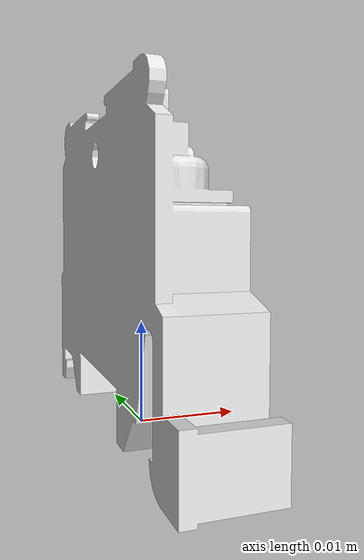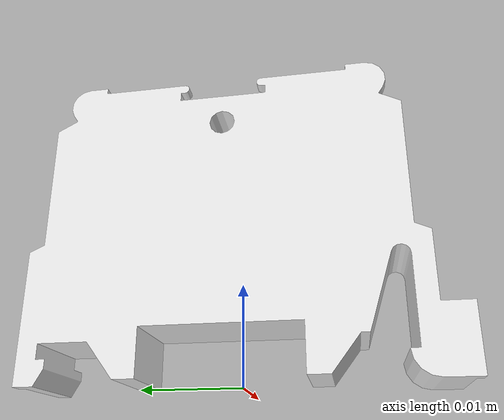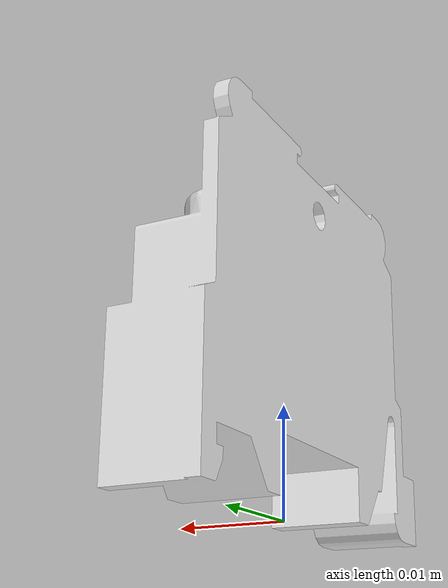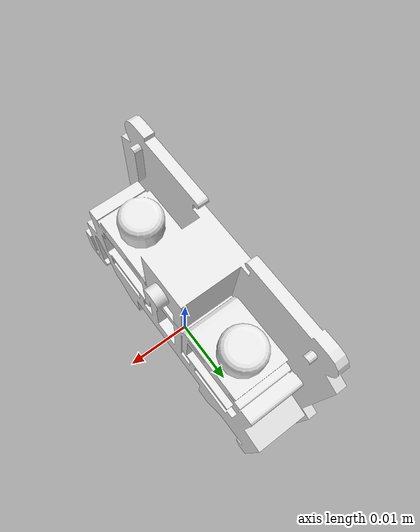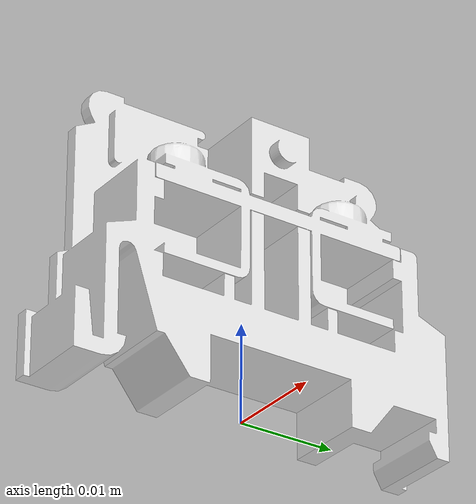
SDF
<?xml version="1.0" ?>
<sdf version="1.6">
  <model name="tb_jotn_15a">
    <link name="link">
      <gravity>false</gravity>
      <visual name="visual">
        <geometry>
          <mesh>
            <uri>file:///root/workcell_ws_classic/src/descriptions/ur_description/meshes/feeder/elec/objects/TB_JOTN-15A.STL</uri>
            <scale>1 1 1</scale>
          </mesh>
        </geometry>
        <material>
          <!-- White metallic -->
          <ambient>0.8 0.8 0.8 1</ambient>
          <diffuse>0.9 0.9 0.9 1</diffuse>
          <specular>0.6 0.6 0.6 1</specular>
          <emissive>0 0 0 1</emissive>
        </material>
      </visual>

        <inertial>
          <mass>0.15</mass>
          <inertia>
            <ixx>0.0005</ixx>
            <ixy>0</ixy>
            <ixz>0</ixz>
            <iyy>0.0005</iyy>
            <iyz>0</iyz>
            <izz>0.0005</izz>
          </inertia>
        </inertial>
    </link>
  </model>
</sdf>
